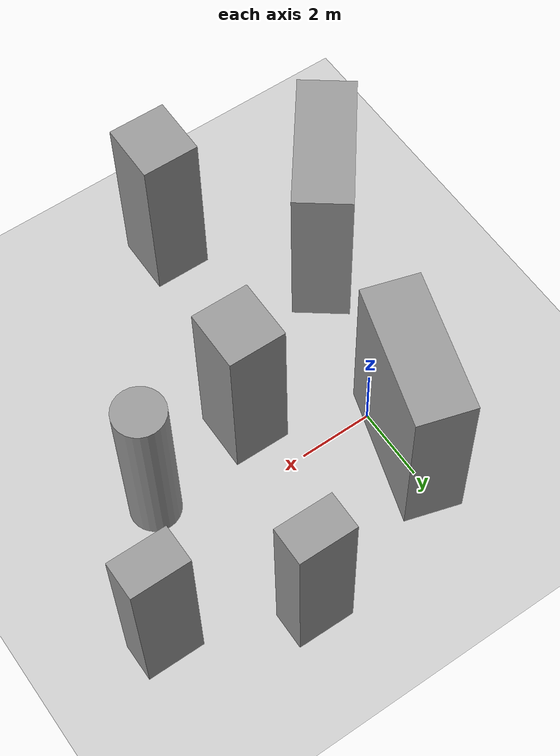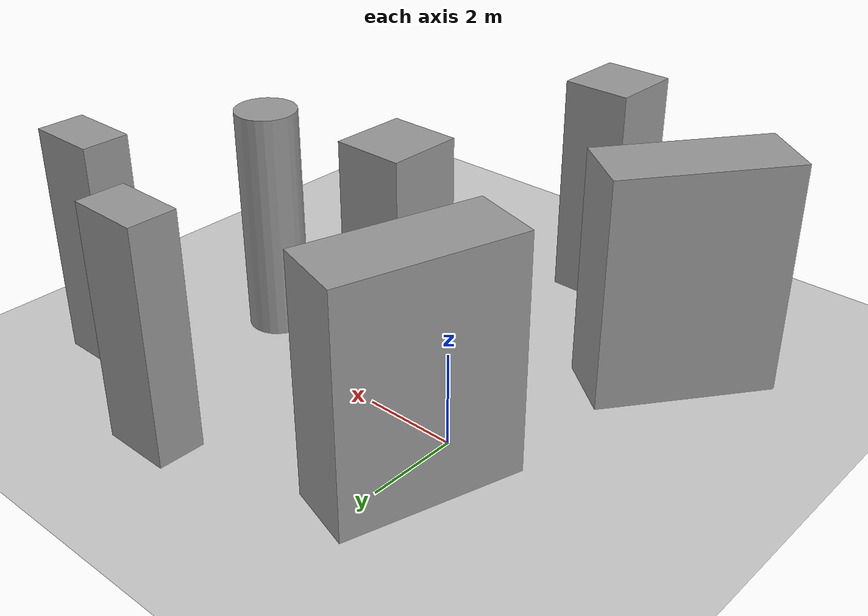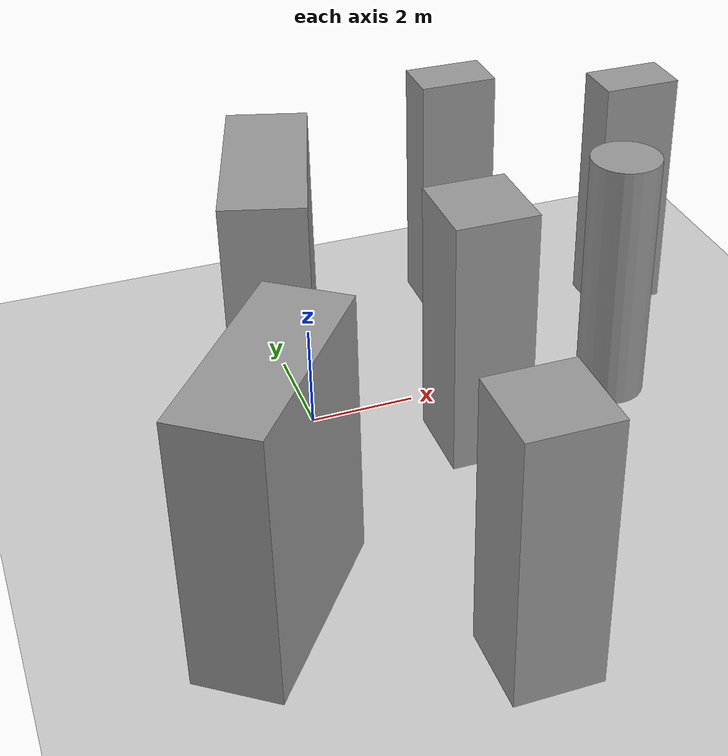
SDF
<sdf version="1.7">
 <world name="default">
  <light name="sun" type="directional">
   <pose>0 0 10 0 -0 0</pose>
   <diffuse>0.8 0.8 0.8 1</diffuse>
   <specular>0.2 0.2 0.2 1</specular>
   <attenuation>
    <range>1000</range>
    <constant>0.9</constant>
    <linear>0.01</linear>
    <quadratic>0.001</quadratic>
   </attenuation>
   <direction>-0.5 0.1 -0.9</direction>
   <spot><inner_angle>0</inner_angle><outer_angle>0</outer_angle><falloff>0</falloff></spot>
  </light>
  <model name="ground_plane">
   <static>1</static>
   <link name="link">
    <collision name="collision">
     <geometry><plane><normal>0 0 1</normal><size>100 100</size></plane></geometry>
     <surface>
      <contact><collide_bitmask>65535</collide_bitmask></contact>
      <friction><ode><mu>100</mu><mu2>50</mu2></ode></friction>
     </surface>
    </collision>
    <visual name="visual">
     <cast_shadows>0</cast_shadows>
     <geometry><plane><normal>0 0 1</normal><size>100 100</size></plane></geometry>
     <material>
      <script><uri>file://media/materials/scripts/gazebo.material</uri><name>Gazebo/Grey</name></script>
     </material>
    </visual>
   </link>
  </model>
  <gravity>0 0 -9.8</gravity>
  <magnetic_field>6e-06 2.3e-05 -4.2e-05</magnetic_field>
  <atmosphere type="adiabatic"/>
  <physics type="ode">
   <max_step_size>0.001</max_step_size>
   <real_time_factor>1</real_time_factor>
   <real_time_update_rate>1000</real_time_update_rate>
  </physics>
  <scene><ambient>0.4 0.4 0.4 1</ambient><background>0.7 0.7 0.7 1</background><shadows>1</shadows></scene>
  <spherical_coordinates>
   <surface_model>EARTH_WGS84</surface_model>
   <latitude_deg>0</latitude_deg>
   <longitude_deg>0</longitude_deg>
   <elevation>0</elevation>
   <heading_deg>0</heading_deg>
  </spherical_coordinates>
  <model name="unit_box_clone_4_clone_1_clone_0_clone_0">
   <pose>-0.286837 1.31177 2.5 0 0 -0.294978</pose>
   <link name="link">
    <inertial>
     <mass>1</mass>
     <inertia>
      <ixx>0.166667</ixx>
      <ixy>0</ixy>
      <ixz>0</ixz>
      <iyy>0.166667</iyy>
      <iyz>0</iyz>
      <izz>0.166667</izz>
     </inertia>
    </inertial>
    <collision name="collision"><geometry><box><size>1.54092 3.82155 5</size></box></geometry></collision>
    <visual name="visual">
     <geometry><box><size>1.54092 3.82155 5</size></box></geometry>
     <material>
      <script><name>Gazebo/Grey</name><uri>file://media/materials/scripts/gazebo.material</uri></script>
     </material>
    </visual>
   </link>
   <static>1</static>
  </model>
  <model name="unit_box_clone_4_clone_1">
   <pose>2.73259 -1.56589 2.5 0 0 -0.009406</pose>
   <link name="link">
    <inertial>
     <mass>1</mass>
     <inertia>
      <ixx>0.166667</ixx>
      <ixy>0</ixy>
      <ixz>0</ixz>
      <iyy>0.166667</iyy>
      <iyz>0</iyz>
      <izz>0.166667</izz>
     </inertia>
    </inertial>
    <collision name="collision"><geometry><box><size>1.54092 1.6222 5</size></box></geometry></collision>
    <visual name="visual">
     <geometry><box><size>1.54092 1.6222 5</size></box></geometry>
     <material>
      <script><name>Gazebo/Grey</name><uri>file://media/materials/scripts/gazebo.material</uri></script>
     </material>
    </visual>
   </link>
   <static>1</static>
  </model>
  <model name="unit_box_clone_4_clone_1_clone_0_clone">
   <pose>-2.00285 -4.75959 2.5 -1e-06 0 -0.649656</pose>
   <link name="link">
    <inertial>
     <mass>1</mass>
     <inertia>
      <ixx>0.166667</ixx>
      <ixy>0</ixy>
      <ixz>0</ixz>
      <iyy>0.166667</iyy>
      <iyz>0</iyz>
      <izz>0.166667</izz>
     </inertia>
    </inertial>
    <collision name="collision"><geometry><box><size>1.54092 3.82155 5</size></box></geometry></collision>
    <visual name="visual">
     <geometry><box><size>1.54092 3.82155 5</size></box></geometry>
     <material>
      <script><name>Gazebo/Grey</name><uri>file://media/materials/scripts/gazebo.material</uri></script>
     </material>
    </visual>
   </link>
   <static>1</static>
  </model>
  <model name="unit_box_clone_2">
   <pose>4.23248 3.63531 2.5 1e-06 -1e-06 -0.01113</pose>
   <link name="link">
    <inertial>
     <mass>1</mass>
     <inertia>
      <ixx>0.166667</ixx>
      <ixy>0</ixy>
      <ixz>0</ixz>
      <iyy>0.166667</iyy>
      <iyz>0</iyz>
      <izz>0.166667</izz>
     </inertia>
    </inertial>
    <collision name="collision"><geometry><box><size>1.54092 1 5</size></box></geometry></collision>
    <visual name="visual">
     <geometry><box><size>1.54092 1 5</size></box></geometry>
     <material>
      <script><name>Gazebo/Grey</name><uri>file://media/materials/scripts/gazebo.material</uri></script>
     </material>
    </visual>
   </link>
   <static>1</static>
  </model>
  <model name="unit_cylinder_clone_2">
   <pose>5.83248 -0.958054 2.49999 0 -0 0.001531</pose>
   <link name="link">
    <inertial>
     <mass>1</mass>
     <inertia><ixx>0.145833</ixx><ixy>0</ixy><ixz>0</ixz><iyy>0.145833</iyy><iyz>0</iyz><izz>0.125</izz></inertia>
    </inertial>
    <collision name="collision">
     <geometry><cylinder><radius>0.66506</radius><length>5</length></cylinder></geometry>
    </collision>
    <visual name="visual">
     <geometry><cylinder><radius>0.66506</radius><length>5</length></cylinder></geometry>
     <material>
      <script><name>Gazebo/Grey</name><uri>file://media/materials/scripts/gazebo.material</uri></script>
     </material>
    </visual>
   </link>
   <static>1</static>
  </model>
  <model name="unit_box_clone_4_clone_0">
   <pose>1.44344 -7.22804 2.5 0 0 -0.009404</pose>
   <link name="link">
    <inertial>
     <mass>1</mass>
     <inertia>
      <ixx>0.166667</ixx>
      <ixy>0</ixy>
      <ixz>0</ixz>
      <iyy>0.166667</iyy>
      <iyz>0</iyz>
      <izz>0.166667</izz>
     </inertia>
    </inertial>
    <collision name="collision"><geometry><box><size>1.54092 1.6222 5</size></box></geometry></collision>
    <visual name="visual">
     <geometry><box><size>1.54092 1.6222 5</size></box></geometry>
     <material>
      <script><name>Gazebo/Grey</name><uri>file://media/materials/scripts/gazebo.material</uri></script>
     </material>
    </visual>
   </link>
   <static>1</static>
  </model>
  <model name="unit_box_clone_8">
   <pose>7.59466 2.23102 2.5 -0 -1e-06 -0.002688</pose>
   <link name="link">
    <inertial>
     <mass>1</mass>
     <inertia>
      <ixx>0.166667</ixx>
      <ixy>0</ixy>
      <ixz>0</ixz>
      <iyy>0.166667</iyy>
      <iyz>0</iyz>
      <izz>0.166667</izz>
     </inertia>
    </inertial>
    <collision name="collision"><geometry><box><size>1.54092 1 5</size></box></geometry></collision>
    <visual name="visual">
     <geometry><box><size>1.54092 1 5</size></box></geometry>
     <material>
      <script><name>Gazebo/Grey</name><uri>file://media/materials/scripts/gazebo.material</uri></script>
     </material>
    </visual>
   </link>
   <static>1</static>
  </model>
 </world>
</sdf>
